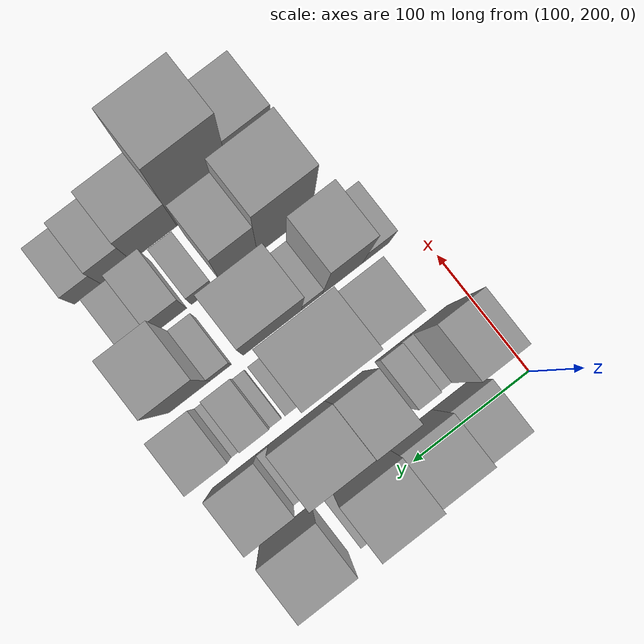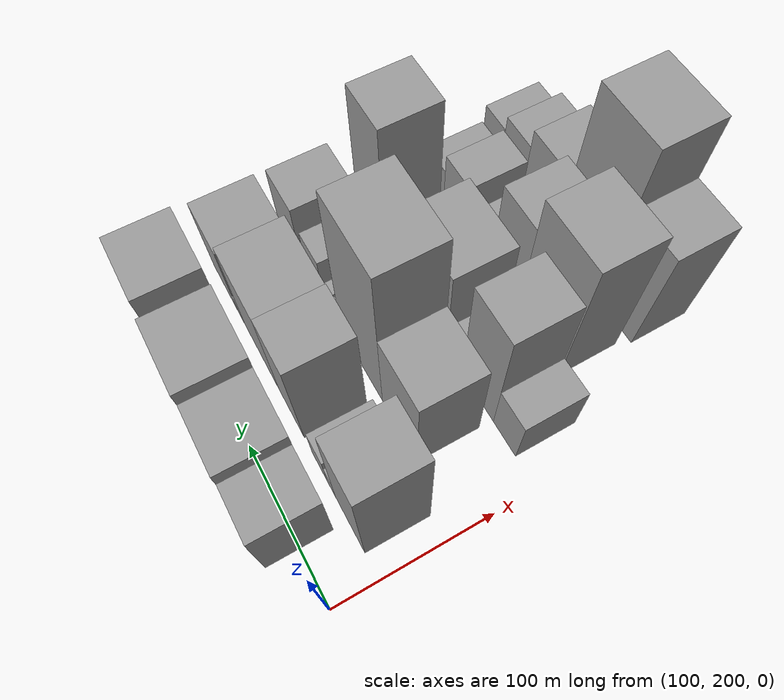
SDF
<sdf version="1.6">
 <world name="default">
  <model name="building_32">
   <static>1</static>
   <pose>100.0000 251.6223 0 0.000000 0.000000 0.000000</pose>
   <link name="link">
    <pose>0 0 30.00 0 0 0</pose>
    <collision name="collision"><geometry><box><size>40.0000 32.8740 60.0000</size></box></geometry></collision>
    <visual name="visual">
     <cast_shadows>0</cast_shadows>
     <geometry><box><size>40.0000 32.8740 60.0000</size></box></geometry>
     <material>
      <script>
       <uri>model://grey_wall/materials/scripts</uri>
       <uri>model://grey_wall/materials/textures</uri>
       <name>vrc/grey_wall</name>
      </script>
     </material>
    </visual>
   </link>
  </model>
  <model name="building_33">
   <static>1</static>
   <pose>100.0000 288.4616 0 0.000000 0.000000 0.000000</pose>
   <link name="link">
    <pose>0 0 36.00 0 0 0</pose>
    <collision name="collision"><geometry><box><size>40.0000 40.8045 72.0000</size></box></geometry></collision>
    <visual name="visual">
     <cast_shadows>0</cast_shadows>
     <geometry><box><size>40.0000 40.8045 72.0000</size></box></geometry>
     <material>
      <script>
       <uri>model://grey_wall/materials/scripts</uri>
       <uri>model://grey_wall/materials/textures</uri>
       <name>vrc/grey_wall</name>
      </script>
     </material>
    </visual>
   </link>
  </model>
  <model name="building_34">
   <static>1</static>
   <pose>100.0000 331.8879 0 0.000000 0.000000 0.000000</pose>
   <link name="link">
    <pose>0 0 42.00 0 0 0</pose>
    <collision name="collision"><geometry><box><size>40.0000 46.0480 84.0000</size></box></geometry></collision>
    <visual name="visual">
     <cast_shadows>0</cast_shadows>
     <geometry><box><size>40.0000 46.0480 84.0000</size></box></geometry>
     <material>
      <script>
       <uri>model://grey_wall/materials/scripts</uri>
       <uri>model://grey_wall/materials/textures</uri>
       <name>vrc/grey_wall</name>
      </script>
     </material>
    </visual>
   </link>
  </model>
  <model name="building_35">
   <static>1</static>
   <pose>100.0000 358.6798 0 0.000000 0.000000 0.000000</pose>
   <link name="link">
    <pose>0 0 9.00 0 0 0</pose>
    <collision name="collision"><geometry><box><size>40.0000 7.5359 18.0000</size></box></geometry></collision>
    <visual name="visual">
     <cast_shadows>0</cast_shadows>
     <geometry><box><size>40.0000 7.5359 18.0000</size></box></geometry>
     <material>
      <script>
       <uri>model://grey_wall/materials/scripts</uri>
       <uri>model://grey_wall/materials/textures</uri>
       <name>vrc/grey_wall</name>
      </script>
     </material>
    </visual>
   </link>
  </model>
  <model name="building_36">
   <static>1</static>
   <pose>100.0000 393.4195 0 0.000000 0.000000 0.000000</pose>
   <link name="link">
    <pose>0 0 37.50 0 0 0</pose>
    <collision name="collision"><geometry><box><size>40.0000 43.9435 75.0000</size></box></geometry></collision>
    <visual name="visual">
     <cast_shadows>0</cast_shadows>
     <geometry><box><size>40.0000 43.9435 75.0000</size></box></geometry>
     <material>
      <script>
       <uri>model://grey_wall/materials/scripts</uri>
       <uri>model://grey_wall/materials/textures</uri>
       <name>vrc/grey_wall</name>
      </script>
     </material>
    </visual>
   </link>
  </model>
  <model name="building_73">
   <static>1</static>
   <pose>149.0000 233.1478 0 0.000000 0.000000 0.000000</pose>
   <link name="link">
    <pose>0 0 52.50 0 0 0</pose>
    <collision name="collision"><geometry><box><size>40.0000 34.0557 105.0000</size></box></geometry></collision>
    <visual name="visual">
     <cast_shadows>0</cast_shadows>
     <geometry><box><size>40.0000 34.0557 105.0000</size></box></geometry>
     <material>
      <script>
       <uri>model://grey_wall/materials/scripts</uri>
       <uri>model://grey_wall/materials/textures</uri>
       <name>vrc/grey_wall</name>
      </script>
     </material>
    </visual>
   </link>
  </model>
  <model name="building_74">
   <static>1</static>
   <pose>149.0000 255.2530 0 0.000000 0.000000 0.000000</pose>
   <link name="link">
    <pose>0 0 12.00 0 0 0</pose>
    <collision name="collision"><geometry><box><size>40.0000 10.1547 24.0000</size></box></geometry></collision>
    <visual name="visual">
     <cast_shadows>0</cast_shadows>
     <geometry><box><size>40.0000 10.1547 24.0000</size></box></geometry>
     <material>
      <script>
       <uri>model://grey_wall/materials/scripts</uri>
       <uri>model://grey_wall/materials/textures</uri>
       <name>vrc/grey_wall</name>
      </script>
     </material>
    </visual>
   </link>
  </model>
  <model name="building_75">
   <static>1</static>
   <pose>149.0000 269.5884 0 0.000000 0.000000 0.000000</pose>
   <link name="link">
    <pose>0 0 16.50 0 0 0</pose>
    <collision name="collision"><geometry><box><size>40.0000 18.5161 33.0000</size></box></geometry></collision>
    <visual name="visual">
     <cast_shadows>0</cast_shadows>
     <geometry><box><size>40.0000 18.5161 33.0000</size></box></geometry>
     <material>
      <script>
       <uri>model://grey_wall/materials/scripts</uri>
       <uri>model://grey_wall/materials/textures</uri>
       <name>vrc/grey_wall</name>
      </script>
     </material>
    </visual>
   </link>
  </model>
  <model name="building_76">
   <static>1</static>
   <pose>149.0000 305.3534 0 0.000000 0.000000 0.000000</pose>
   <link name="link">
    <pose>0 0 46.50 0 0 0</pose>
    <collision name="collision"><geometry><box><size>40.0000 33.0138 93.0000</size></box></geometry></collision>
    <visual name="visual">
     <cast_shadows>0</cast_shadows>
     <geometry><box><size>40.0000 33.0138 93.0000</size></box></geometry>
     <material>
      <script>
       <uri>model://grey_wall/materials/scripts</uri>
       <uri>model://grey_wall/materials/textures</uri>
       <name>vrc/grey_wall</name>
      </script>
     </material>
    </visual>
   </link>
  </model>
  <model name="building_77">
   <static>1</static>
   <pose>149.0000 345.8923 0 0.000000 0.000000 0.000000</pose>
   <link name="link">
    <pose>0 0 45.00 0 0 0</pose>
    <collision name="collision"><geometry><box><size>40.0000 48.0641 90.0000</size></box></geometry></collision>
    <visual name="visual">
     <cast_shadows>0</cast_shadows>
     <geometry><box><size>40.0000 48.0641 90.0000</size></box></geometry>
     <material>
      <script>
       <uri>model://grey_wall/materials/scripts</uri>
       <uri>model://grey_wall/materials/textures</uri>
       <name>vrc/grey_wall</name>
      </script>
     </material>
    </visual>
   </link>
  </model>
  <model name="building_78">
   <static>1</static>
   <pose>149.0000 374.8563 0 0.000000 0.000000 0.000000</pose>
   <link name="link">
    <pose>0 0 10.50 0 0 0</pose>
    <collision name="collision"><geometry><box><size>40.0000 9.8639 21.0000</size></box></geometry></collision>
    <visual name="visual">
     <cast_shadows>0</cast_shadows>
     <geometry><box><size>40.0000 9.8639 21.0000</size></box></geometry>
     <material>
      <script>
       <uri>model://grey_wall/materials/scripts</uri>
       <uri>model://grey_wall/materials/textures</uri>
       <name>vrc/grey_wall</name>
      </script>
     </material>
    </visual>
   </link>
  </model>
  <model name="building_79">
   <static>1</static>
   <pose>149.0000 398.5782 0 0.000000 0.000000 0.000000</pose>
   <link name="link">
    <pose>0 0 34.50 0 0 0</pose>
    <collision name="collision"><geometry><box><size>40.0000 37.5798 69.0000</size></box></geometry></collision>
    <visual name="visual">
     <cast_shadows>0</cast_shadows>
     <geometry><box><size>40.0000 37.5798 69.0000</size></box></geometry>
     <material>
      <script>
       <uri>model://grey_wall/materials/scripts</uri>
       <uri>model://grey_wall/materials/textures</uri>
       <name>vrc/grey_wall</name>
      </script>
     </material>
    </visual>
   </link>
  </model>
  <model name="building_120">
   <static>1</static>
   <pose>198.0000 266.2450 0 0.000000 0.000000 0.000000</pose>
   <link name="link">
    <pose>0 0 40.50 0 0 0</pose>
    <collision name="collision"><geometry><box><size>40.0000 41.4412 81.0000</size></box></geometry></collision>
    <visual name="visual">
     <cast_shadows>0</cast_shadows>
     <geometry><box><size>40.0000 41.4412 81.0000</size></box></geometry>
     <material>
      <script>
       <uri>model://grey_wall/materials/scripts</uri>
       <uri>model://grey_wall/materials/textures</uri>
       <name>vrc/grey_wall</name>
      </script>
     </material>
    </visual>
   </link>
  </model>
  <model name="building_121">
   <static>1</static>
   <pose>198.0000 312.8597 0 0.000000 0.000000 0.000000</pose>
   <link name="link">
    <pose>0 0 72.00 0 0 0</pose>
    <collision name="collision"><geometry><box><size>40.0000 51.7882 144.0000</size></box></geometry></collision>
    <visual name="visual">
     <cast_shadows>0</cast_shadows>
     <geometry><box><size>40.0000 51.7882 144.0000</size></box></geometry>
     <material>
      <script>
       <uri>model://grey_wall/materials/scripts</uri>
       <uri>model://grey_wall/materials/textures</uri>
       <name>vrc/grey_wall</name>
      </script>
     </material>
    </visual>
   </link>
  </model>
  <model name="building_122">
   <static>1</static>
   <pose>198.0000 343.7553 0 0.000000 0.000000 0.000000</pose>
   <link name="link">
    <pose>0 0 12.00 0 0 0</pose>
    <collision name="collision"><geometry><box><size>40.0000 10.0031 24.0000</size></box></geometry></collision>
    <visual name="visual">
     <cast_shadows>0</cast_shadows>
     <geometry><box><size>40.0000 10.0031 24.0000</size></box></geometry>
     <material>
      <script>
       <uri>model://grey_wall/materials/scripts</uri>
       <uri>model://grey_wall/materials/textures</uri>
       <name>vrc/grey_wall</name>
      </script>
     </material>
    </visual>
   </link>
  </model>
  <model name="building_123">
   <static>1</static>
   <pose>198.0000 356.6241 0 0.000000 0.000000 0.000000</pose>
   <link name="link">
    <pose>0 0 10.50 0 0 0</pose>
    <collision name="collision"><geometry><box><size>40.0000 9.7346 21.0000</size></box></geometry></collision>
    <visual name="visual">
     <cast_shadows>0</cast_shadows>
     <geometry><box><size>40.0000 9.7346 21.0000</size></box></geometry>
     <material>
      <script>
       <uri>model://grey_wall/materials/scripts</uri>
       <uri>model://grey_wall/materials/textures</uri>
       <name>vrc/grey_wall</name>
      </script>
     </material>
    </visual>
   </link>
  </model>
  <model name="building_124">
   <static>1</static>
   <pose>198.0000 373.1696 0 0.000000 0.000000 0.000000</pose>
   <link name="link">
    <pose>0 0 22.50 0 0 0</pose>
    <collision name="collision"><geometry><box><size>40.0000 23.3564 45.0000</size></box></geometry></collision>
    <visual name="visual">
     <cast_shadows>0</cast_shadows>
     <geometry><box><size>40.0000 23.3564 45.0000</size></box></geometry>
     <material>
      <script>
       <uri>model://grey_wall/materials/scripts</uri>
       <uri>model://grey_wall/materials/textures</uri>
       <name>vrc/grey_wall</name>
      </script>
     </material>
    </visual>
   </link>
  </model>
  <model name="building_125">
   <static>1</static>
   <pose>198.0000 388.9677 0 0.000000 0.000000 0.000000</pose>
   <link name="link">
    <pose>0 0 9.00 0 0 0</pose>
    <collision name="collision"><geometry><box><size>40.0000 8.2398 18.0000</size></box></geometry></collision>
    <visual name="visual">
     <cast_shadows>0</cast_shadows>
     <geometry><box><size>40.0000 8.2398 18.0000</size></box></geometry>
     <material>
      <script>
       <uri>model://grey_wall/materials/scripts</uri>
       <uri>model://grey_wall/materials/textures</uri>
       <name>vrc/grey_wall</name>
      </script>
     </material>
    </visual>
   </link>
  </model>
  <model name="building_126">
   <static>1</static>
   <pose>198.0000 409.4354 0 0.000000 0.000000 0.000000</pose>
   <link name="link">
    <pose>0 0 28.50 0 0 0</pose>
    <collision name="collision"><geometry><box><size>40.0000 32.6957 57.0000</size></box></geometry></collision>
    <visual name="visual">
     <cast_shadows>0</cast_shadows>
     <geometry><box><size>40.0000 32.6957 57.0000</size></box></geometry>
     <material>
      <script>
       <uri>model://grey_wall/materials/scripts</uri>
       <uri>model://grey_wall/materials/textures</uri>
       <name>vrc/grey_wall</name>
      </script>
     </material>
    </visual>
   </link>
  </model>
  <model name="building_167">
   <static>1</static>
   <pose>247.0000 232.9688 0 0.000000 0.000000 0.000000</pose>
   <link name="link">
    <pose>0 0 22.50 0 0 0</pose>
    <collision name="collision"><geometry><box><size>40.0000 23.4178 45.0000</size></box></geometry></collision>
    <visual name="visual">
     <cast_shadows>0</cast_shadows>
     <geometry><box><size>40.0000 23.4178 45.0000</size></box></geometry>
     <material>
      <script>
       <uri>model://grey_wall/materials/scripts</uri>
       <uri>model://grey_wall/materials/textures</uri>
       <name>vrc/grey_wall</name>
      </script>
     </material>
    </visual>
   </link>
  </model>
  <model name="building_168">
   <static>1</static>
   <pose>247.0000 261.8879 0 0.000000 0.000000 0.000000</pose>
   <link name="link">
    <pose>0 0 52.50 0 0 0</pose>
    <collision name="collision"><geometry><box><size>40.0000 34.4205 105.0000</size></box></geometry></collision>
    <visual name="visual">
     <cast_shadows>0</cast_shadows>
     <geometry><box><size>40.0000 34.4205 105.0000</size></box></geometry>
     <material>
      <script>
       <uri>model://grey_wall/materials/scripts</uri>
       <uri>model://grey_wall/materials/textures</uri>
       <name>vrc/grey_wall</name>
      </script>
     </material>
    </visual>
   </link>
  </model>
  <model name="building_169">
   <static>1</static>
   <pose>247.0000 288.0005 0 0.000000 0.000000 0.000000</pose>
   <link name="link">
    <pose>0 0 15.00 0 0 0</pose>
    <collision name="collision"><geometry><box><size>40.0000 17.8047 30.0000</size></box></geometry></collision>
    <visual name="visual">
     <cast_shadows>0</cast_shadows>
     <geometry><box><size>40.0000 17.8047 30.0000</size></box></geometry>
     <material>
      <script>
       <uri>model://grey_wall/materials/scripts</uri>
       <uri>model://grey_wall/materials/textures</uri>
       <name>vrc/grey_wall</name>
      </script>
     </material>
    </visual>
   </link>
  </model>
  <model name="building_170">
   <static>1</static>
   <pose>247.0000 321.7144 0 0.000000 0.000000 0.000000</pose>
   <link name="link">
    <pose>0 0 42.00 0 0 0</pose>
    <collision name="collision"><geometry><box><size>40.0000 49.6230 84.0000</size></box></geometry></collision>
    <visual name="visual">
     <cast_shadows>0</cast_shadows>
     <geometry><box><size>40.0000 49.6230 84.0000</size></box></geometry>
     <material>
      <script>
       <uri>model://grey_wall/materials/scripts</uri>
       <uri>model://grey_wall/materials/textures</uri>
       <name>vrc/grey_wall</name>
      </script>
     </material>
    </visual>
   </link>
  </model>
  <model name="building_171">
   <static>1</static>
   <pose>247.0000 365.6499 0 0.000000 0.000000 0.000000</pose>
   <link name="link">
    <pose>0 0 18.00 0 0 0</pose>
    <collision name="collision"><geometry><box><size>40.0000 18.2480 36.0000</size></box></geometry></collision>
    <visual name="visual">
     <cast_shadows>0</cast_shadows>
     <geometry><box><size>40.0000 18.2480 36.0000</size></box></geometry>
     <material>
      <script>
       <uri>model://grey_wall/materials/scripts</uri>
       <uri>model://grey_wall/materials/textures</uri>
       <name>vrc/grey_wall</name>
      </script>
     </material>
    </visual>
   </link>
  </model>
  <model name="building_172">
   <static>1</static>
   <pose>247.0000 392.4351 0 0.000000 0.000000 0.000000</pose>
   <link name="link">
    <pose>0 0 58.50 0 0 0</pose>
    <collision name="collision"><geometry><box><size>40.0000 35.3224 117.0000</size></box></geometry></collision>
    <visual name="visual">
     <cast_shadows>0</cast_shadows>
     <geometry><box><size>40.0000 35.3224 117.0000</size></box></geometry>
     <material>
      <script>
       <uri>model://grey_wall/materials/scripts</uri>
       <uri>model://grey_wall/materials/textures</uri>
       <name>vrc/grey_wall</name>
      </script>
     </material>
    </visual>
   </link>
  </model>
  <model name="building_218">
   <static>1</static>
   <pose>296.0000 273.3173 0 0.000000 0.000000 0.000000</pose>
   <link name="link">
    <pose>0 0 60.00 0 0 0</pose>
    <collision name="collision"><geometry><box><size>40.0000 46.5287 120.0000</size></box></geometry></collision>
    <visual name="visual">
     <cast_shadows>0</cast_shadows>
     <geometry><box><size>40.0000 46.5287 120.0000</size></box></geometry>
     <material>
      <script>
       <uri>model://grey_wall/materials/scripts</uri>
       <uri>model://grey_wall/materials/textures</uri>
       <name>vrc/grey_wall</name>
      </script>
     </material>
    </visual>
   </link>
  </model>
  <model name="building_219">
   <static>1</static>
   <pose>296.0000 312.3216 0 0.000000 0.000000 0.000000</pose>
   <link name="link">
    <pose>0 0 46.50 0 0 0</pose>
    <collision name="collision"><geometry><box><size>40.0000 31.4800 93.0000</size></box></geometry></collision>
    <visual name="visual">
     <cast_shadows>0</cast_shadows>
     <geometry><box><size>40.0000 31.4800 93.0000</size></box></geometry>
     <material>
      <script>
       <uri>model://grey_wall/materials/scripts</uri>
       <uri>model://grey_wall/materials/textures</uri>
       <name>vrc/grey_wall</name>
      </script>
     </material>
    </visual>
   </link>
  </model>
  <model name="building_220">
   <static>1</static>
   <pose>296.0000 343.6805 0 0.000000 0.000000 0.000000</pose>
   <link name="link">
    <pose>0 0 18.00 0 0 0</pose>
    <collision name="collision"><geometry><box><size>40.0000 19.2378 36.0000</size></box></geometry></collision>
    <visual name="visual">
     <cast_shadows>0</cast_shadows>
     <geometry><box><size>40.0000 19.2378 36.0000</size></box></geometry>
     <material>
      <script>
       <uri>model://grey_wall/materials/scripts</uri>
       <uri>model://grey_wall/materials/textures</uri>
       <name>vrc/grey_wall</name>
      </script>
     </material>
    </visual>
   </link>
  </model>
  <model name="building_221">
   <static>1</static>
   <pose>296.0000 370.8775 0 0.000000 0.000000 0.000000</pose>
   <link name="link">
    <pose>0 0 27.00 0 0 0</pose>
    <collision name="collision"><geometry><box><size>40.0000 27.1563 54.0000</size></box></geometry></collision>
    <visual name="visual">
     <cast_shadows>0</cast_shadows>
     <geometry><box><size>40.0000 27.1563 54.0000</size></box></geometry>
     <material>
      <script>
       <uri>model://grey_wall/materials/scripts</uri>
       <uri>model://grey_wall/materials/textures</uri>
       <name>vrc/grey_wall</name>
      </script>
     </material>
    </visual>
   </link>
  </model>
  <model name="building_222">
   <static>1</static>
   <pose>296.0000 395.3470 0 0.000000 0.000000 0.000000</pose>
   <link name="link">
    <pose>0 0 19.50 0 0 0</pose>
    <collision name="collision"><geometry><box><size>40.0000 21.7826 39.0000</size></box></geometry></collision>
    <visual name="visual">
     <cast_shadows>0</cast_shadows>
     <geometry><box><size>40.0000 21.7826 39.0000</size></box></geometry>
     <material>
      <script>
       <uri>model://grey_wall/materials/scripts</uri>
       <uri>model://grey_wall/materials/textures</uri>
       <name>vrc/grey_wall</name>
      </script>
     </material>
    </visual>
   </link>
  </model>
  <model name="building_264">
   <static>1</static>
   <pose>345.0000 263.4917 0 0.000000 0.000000 0.000000</pose>
   <link name="link">
    <pose>0 0 48.00 0 0 0</pose>
    <collision name="collision"><geometry><box><size>40.0000 34.8300 96.0000</size></box></geometry></collision>
    <visual name="visual">
     <cast_shadows>0</cast_shadows>
     <geometry><box><size>40.0000 34.8300 96.0000</size></box></geometry>
     <material>
      <script>
       <uri>model://grey_wall/materials/scripts</uri>
       <uri>model://grey_wall/materials/textures</uri>
       <name>vrc/grey_wall</name>
      </script>
     </material>
    </visual>
   </link>
  </model>
  <model name="building_265">
   <static>1</static>
   <pose>345.0000 304.6443 0 0.000000 0.000000 0.000000</pose>
   <link name="link">
    <pose>0 0 72.00 0 0 0</pose>
    <collision name="collision"><geometry><box><size>40.0000 47.4752 144.0000</size></box></geometry></collision>
    <visual name="visual">
     <cast_shadows>0</cast_shadows>
     <geometry><box><size>40.0000 47.4752 144.0000</size></box></geometry>
     <material>
      <script>
       <uri>model://grey_wall/materials/scripts</uri>
       <uri>model://grey_wall/materials/textures</uri>
       <name>vrc/grey_wall</name>
      </script>
     </material>
    </visual>
   </link>
  </model>
  <model name="building_266">
   <static>1</static>
   <pose>345.0000 347.8756 0 0.000000 0.000000 0.000000</pose>
   <link name="link">
    <pose>0 0 33.00 0 0 0</pose>
    <collision name="collision"><geometry><box><size>40.0000 38.9873 66.0000</size></box></geometry></collision>
    <visual name="visual">
     <cast_shadows>0</cast_shadows>
     <geometry><box><size>40.0000 38.9873 66.0000</size></box></geometry>
     <material>
      <script>
       <uri>model://grey_wall/materials/scripts</uri>
       <uri>model://grey_wall/materials/textures</uri>
       <name>vrc/grey_wall</name>
      </script>
     </material>
    </visual>
   </link>
  </model>
  <model name="building_267">
   <static>1</static>
   <pose>345.0000 380.3780 0 0.000000 0.000000 0.000000</pose>
   <link name="link">
    <pose>0 0 25.50 0 0 0</pose>
    <collision name="collision"><geometry><box><size>40.0000 26.0175 51.0000</size></box></geometry></collision>
    <visual name="visual">
     <cast_shadows>0</cast_shadows>
     <geometry><box><size>40.0000 26.0175 51.0000</size></box></geometry>
     <material>
      <script>
       <uri>model://grey_wall/materials/scripts</uri>
       <uri>model://grey_wall/materials/textures</uri>
       <name>vrc/grey_wall</name>
      </script>
     </material>
    </visual>
   </link>
  </model>
  <model name="building_268">
   <static>1</static>
   <pose>345.0000 404.7835 0 0.000000 0.000000 0.000000</pose>
   <link name="link">
    <pose>0 0 19.50 0 0 0</pose>
    <collision name="collision"><geometry><box><size>40.0000 22.7936 39.0000</size></box></geometry></collision>
    <visual name="visual">
     <cast_shadows>0</cast_shadows>
     <geometry><box><size>40.0000 22.7936 39.0000</size></box></geometry>
     <material>
      <script>
       <uri>model://grey_wall/materials/scripts</uri>
       <uri>model://grey_wall/materials/textures</uri>
       <name>vrc/grey_wall</name>
      </script>
     </material>
    </visual>
   </link>
  </model>
 </world>
</sdf>
